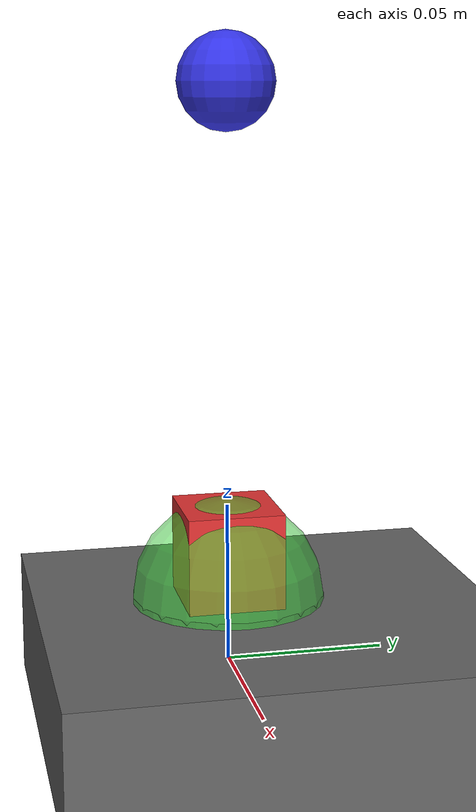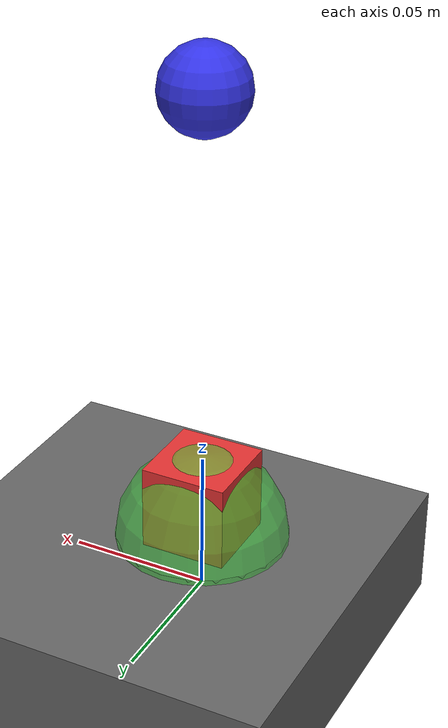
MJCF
<mujoco model="pick_place_stable">
  <compiler angle="degree" coordinate="local"/>
  <option timestep="0.005" gravity="0 0 -9.81" integrator="RK4" cone="pyramidal"/>
  <size njmax="400" nconmax="120"/>
  <default>
    <geom friction="1.0 0.1 0.01" condim="4" solref="0.005 1" solimp="0.95 0.99 0.001"/>
    <joint damping="2" armature="0.001" frictionloss="0.0005"/>
  </default>
  <asset>
    <texture type="skybox" builtin="gradient" width="256" height="256"
             rgb1="0.7 0.8 0.9" rgb2="0.2 0.3 0.4"/>
    <material name="mat_table" rgba="0.4 0.4 0.4 1"/>
    <material name="mat_cube"  rgba="0.9 0.2 0.2 1"/>
    <material name="mat_target" rgba="0.2 0.9 0.2 0.5"/>
    <material name="mat_gripper" rgba="0.2 0.2 0.9 1"/>
  </asset>
  <worldbody>
    <geom name="table" type="box" size="0.35 0.35 0.02" pos="0 0 0" material="mat_table" contype="1" conaffinity="1"/>
    <body name="target_body" pos="0 0 0.021">
      <geom name="target_disc" type="cylinder" size="0.03 0.001" material="mat_target" contype="0" conaffinity="0"/>
      <site name="target" pos="0 0 0.001" size="0.03" rgba="0.2 0.9 0.2 0.5" type="sphere"/>
    </body>
    <body name="cube_body" pos="0 0 0.035">
      <joint name="cube_free" type="free" damping="5"/>
      <geom name="cube" type="box" size="0.015 0.015 0.015" material="mat_cube" mass="0.08"/>
    </body>
    <body name="mocap_eef" pos="0 0 0.18" mocap="true">
      <geom name="eef_vis" type="sphere" size="0.015" material="mat_gripper" mass="0.0001"/>
      <site name="eef_site" pos="0 0 0" size="0.008" rgba="0.1 0.1 1 1"/>
    </body>
  </worldbody>
  <actuator/>
  <visual>
    <map znear="0.01" zfar="3.0"/>
    <quality shadowsize="2048"/>
  </visual>
</mujoco>
